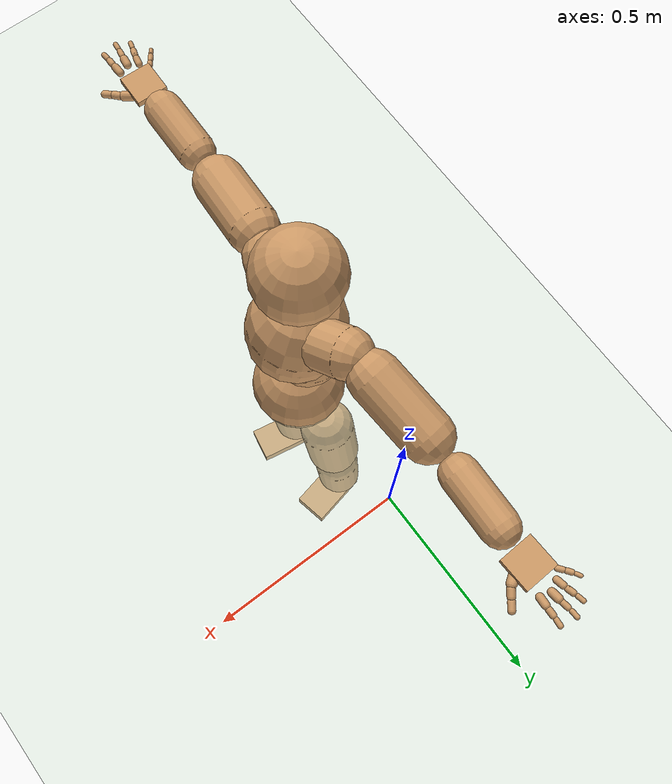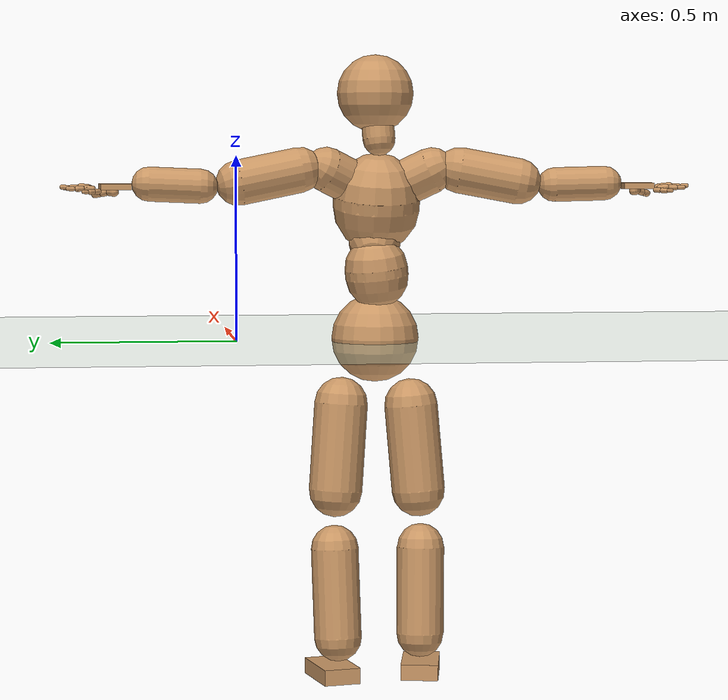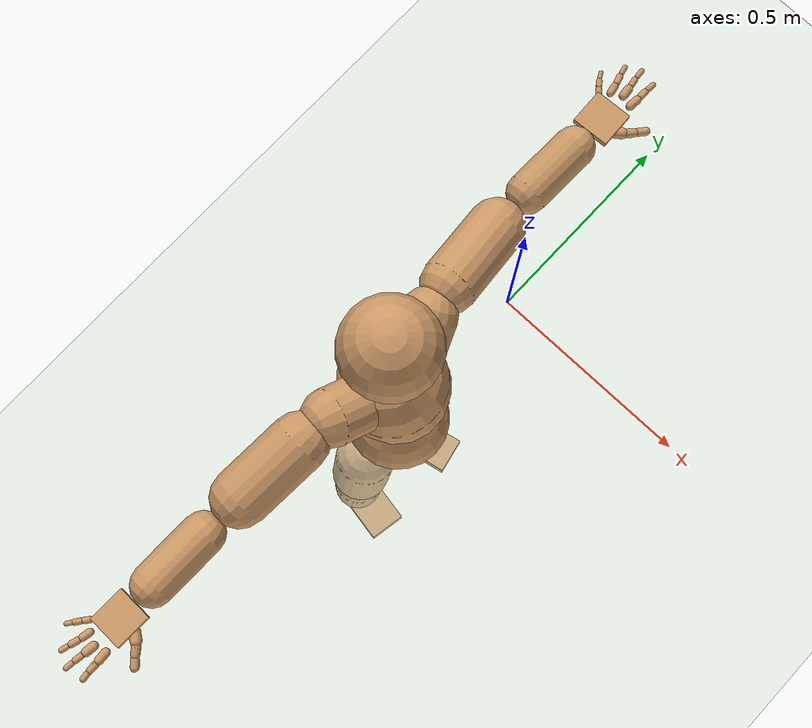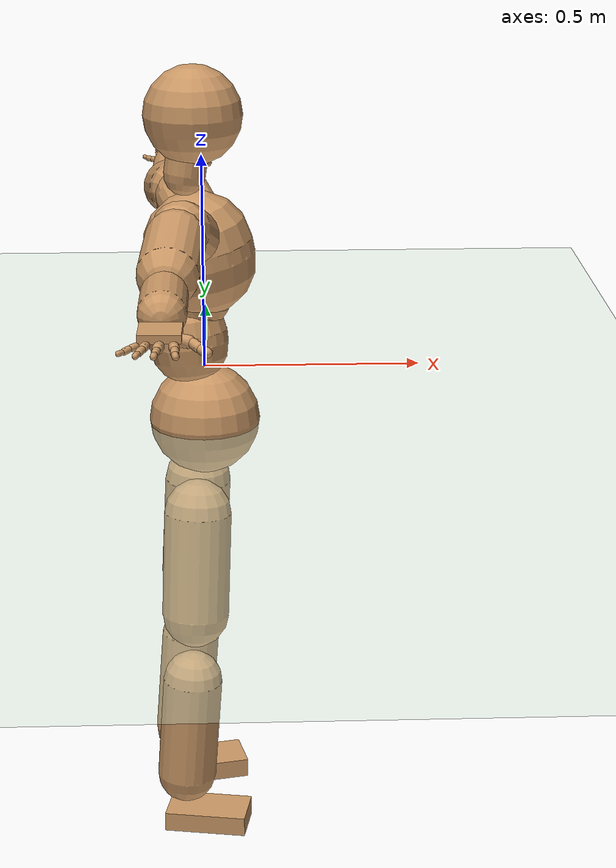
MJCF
<mujoco model="humanoid">
  <compiler coordinate="local" angle="radian"/>
  <default>
    <joint damping="0.0" armature="0.01" stiffness="0.0" limited="true"/>
    <geom conaffinity="1" condim="3" contype="7" margin="0.001" rgba="0.8 0.6 .4 1"/>
  </default>
  <asset>
    <texture type="skybox" builtin="gradient" rgb1=".4 .5 .6" rgb2="0 0 0" width="100" height="100"/>
    <texture builtin="flat" height="1278" mark="cross" markrgb="1 1 1" name="texgeom" random="0.01" rgb1="0.8 0.6 0.4" rgb2="0.8 0.6 0.4" type="cube" width="127"/>
    <texture builtin="checker" height="100" name="texplane" rgb1="0 0 0" rgb2="0.8 0.8 0.8" type="2d" width="100"/>
    <material name="MatPlane" reflectance="0.5" shininess="1" specular="1" texrepeat="60 60" texture="texplane"/>
    <material name="geom" texture="texgeom" texuniform="true"/>
  </asset>
  <worldbody>
    <light cutoff="100" diffuse="1 1 1" dir="-0 0 -1.3" directional="true" exponent="1" pos="0 0 1.3" specular=".1 .1 .1"/>
    <geom conaffinity="1" condim="3" name="floor" pos="0 0 0" rgba="0.8 0.9 0.8 1" size="100 100 .2" type="plane" material="MatPlane"/>
    <body name="Pelvis" pos="0.0011 -0.3762 0.0069">
      <freejoint name="Pelvis"/>
      <geom type="sphere" contype="1" conaffinity="1" density="500" size="0.1190" pos="0.0000 0.0000 0.0000" name="Pelvis"/>
      <body name="L_Hip" pos="-0.014 0.0897 -0.0989">
        <joint name="L_Hip_x" type="hinge" pos="0 0 0" axis="1 0 0" stiffness="800" damping="80" armature="0.02" range="-180.0000 180.0000"/>
        <joint name="L_Hip_y" type="hinge" pos="0 0 0" axis="0 1 0" stiffness="800" damping="80" armature="0.02" range="-180.0000 180.0000"/>
        <joint name="L_Hip_z" type="hinge" pos="0 0 0" axis="0 0 1" stiffness="800" damping="80" armature="0.02" range="-180.0000 180.0000"/>
        <geom type="capsule" contype="1" conaffinity="1" density="500" fromto="-0.0044 0.0055 -0.0782 -0.0175 0.0221 -0.3129" size="0.0725" name="L_Hip"/>
        <body name="L_Knee" pos="-0.0219 0.0276 -0.3911">
          <joint name="L_Knee_x" type="hinge" pos="0 0 0" axis="1 0 0" stiffness="800" damping="80" armature="0.02" range="-180.0000 180.0000"/>
          <joint name="L_Knee_y" type="hinge" pos="0 0 0" axis="0 1 0" stiffness="800" damping="80" armature="0.02" range="-180.0000 180.0000"/>
          <joint name="L_Knee_z" type="hinge" pos="0 0 0" axis="0 0 1" stiffness="800" damping="80" armature="0.02" range="-180.0000 180.0000"/>
          <geom type="capsule" contype="1" conaffinity="1" density="500" fromto="-0.0063 -0.0021 -0.0803 -0.0253 -0.0085 -0.3211" size="0.0645" name="L_Knee"/>
          <body name="L_Ankle" pos="-0.0317 -0.0106 -0.4014">
            <joint name="L_Ankle_x" type="hinge" pos="0 0 0" axis="1 0 0" stiffness="800" damping="80" armature="0.02" range="-180.0000 180.0000"/>
            <joint name="L_Ankle_y" type="hinge" pos="0 0 0" axis="0 1 0" stiffness="800" damping="80" armature="0.02" range="-180.0000 180.0000"/>
            <joint name="L_Ankle_z" type="hinge" pos="0 0 0" axis="0 0 1" stiffness="800" damping="80" armature="0.02" range="-180.0000 180.0000"/>
            <geom type="box" contype="1" conaffinity="1" density="500" pos="0.0560 0.0118 -0.0218" size="0.0899 0.0507 0.0215" quat="0.9946 0.0000 0.0000 0.1037" name="L_Ankle"/>
            <body name="L_Toe" pos="0.1121 0.0236 -0.0437">
              <joint name="L_Toe_x" type="hinge" pos="0 0 0" axis="1 0 0" stiffness="500" damping="50" armature="0.02" range="-180.0000 180.0000"/>
              <joint name="L_Toe_y" type="hinge" pos="0 0 0" axis="0 1 0" stiffness="500" damping="50" armature="0.02" range="-180.0000 180.0000"/>
              <joint name="L_Toe_z" type="hinge" pos="0 0 0" axis="0 0 1" stiffness="500" damping="50" armature="0.02" range="-180.0000 180.0000"/>
              <geom type="box" contype="1" conaffinity="1" density="500" pos="0.0000 0.0000 0.0219" size="0.001 0.0025 0.0011" quat="0.9939 0.0000 0.0000 0.1103" name="L_Toe"/>
            </body>
          </body>
        </body>
      </body>
      <body name="R_Hip" pos="-0.0149 -0.0898 -0.1053">
        <joint name="R_Hip_x" type="hinge" pos="0 0 0" axis="1 0 0" stiffness="800" damping="80" armature="0.02" range="-180.0000 180.0000"/>
        <joint name="R_Hip_y" type="hinge" pos="0 0 0" axis="0 1 0" stiffness="800" damping="80" armature="0.02" range="-180.0000 180.0000"/>
        <joint name="R_Hip_z" type="hinge" pos="0 0 0" axis="0 0 1" stiffness="800" damping="80" armature="0.02" range="-180.0000 180.0000"/>
        <geom type="capsule" contype="1" conaffinity="1" density="500" fromto="-0.0030 -0.0064 -0.0774 -0.0120 -0.0258 -0.3097" size="0.0723" name="R_Hip"/>
        <body name="R_Knee" pos="-0.015 -0.0322 -0.3871">
          <joint name="R_Knee_x" type="hinge" pos="0 0 0" axis="1 0 0" stiffness="800" damping="80" armature="0.02" range="-180.0000 180.0000"/>
          <joint name="R_Knee_y" type="hinge" pos="0 0 0" axis="0 1 0" stiffness="800" damping="80" armature="0.02" range="-180.0000 180.0000"/>
          <joint name="R_Knee_z" type="hinge" pos="0 0 0" axis="0 0 1" stiffness="800" damping="80" armature="0.02" range="-180.0000 180.0000"/>
          <geom type="capsule" contype="1" conaffinity="1" density="500" fromto="-0.0057 0.0011 -0.0785 -0.0229 0.0044 -0.3138" size="0.0645" name="R_Knee"/>
          <body name="R_Ankle" pos="-0.0286 0.0055 -0.3923">
            <joint name="R_Ankle_x" type="hinge" pos="0 0 0" axis="1 0 0" stiffness="800" damping="80" armature="0.02" range="-180.0000 180.0000"/>
            <joint name="R_Ankle_y" type="hinge" pos="0 0 0" axis="0 1 0" stiffness="800" damping="80" armature="0.02" range="-180.0000 180.0000"/>
            <joint name="R_Ankle_z" type="hinge" pos="0 0 0" axis="0 0 1" stiffness="800" damping="80" armature="0.02" range="-180.0000 180.0000"/>
            <geom type="box" contype="1" conaffinity="1" density="500" pos="0.0530 -0.0096 -0.0234" size="0.0899 0.0507 0.0215" quat="0.9960 0.0000 0.0000 -0.0891" name="R_Ankle"/>
            <body name="R_Toe" pos="0.1059 -0.0191 -0.0468">
              <joint name="R_Toe_x" type="hinge" pos="0 0 0" axis="1 0 0" stiffness="500" damping="50" armature="0.02" range="-180.0000 180.0000"/>
              <joint name="R_Toe_y" type="hinge" pos="0 0 0" axis="0 1 0" stiffness="500" damping="50" armature="0.02" range="-180.0000 180.0000"/>
              <joint name="R_Toe_z" type="hinge" pos="0 0 0" axis="0 0 1" stiffness="500" damping="50" armature="0.02" range="-180.0000 180.0000"/>
              <geom type="box" contype="1" conaffinity="1" density="500" pos="0.0000 0.0000 0.0234" size="0.001 0.0025 0.0011" quat="0.9969 0.0000 0.0000 -0.0785" name="R_Toe"/>
            </body>
          </body>
        </body>
      </body>
      <body name="Torso" pos="-0.0262 -0.0068 0.1175">
        <joint name="Torso_x" type="hinge" pos="0 0 0" axis="1 0 0" stiffness="1000" damping="100" armature="0.02" range="-180.0000 180.0000"/>
        <joint name="Torso_y" type="hinge" pos="0 0 0" axis="0 1 0" stiffness="1000" damping="100" armature="0.02" range="-180.0000 180.0000"/>
        <joint name="Torso_z" type="hinge" pos="0 0 0" axis="0 0 1" stiffness="1000" damping="100" armature="0.02" range="-180.0000 180.0000"/>
        <geom type="capsule" contype="1" conaffinity="1" density="500" fromto="-0.0072 0.0084 0.0744 -0.0048 0.0056 0.0496" size="0.085" name="Torso"/>
        <body name="Spine" pos="-0.012 0.0141 0.124">
          <joint name="Spine_x" type="hinge" pos="0 0 0" axis="1 0 0" stiffness="1000" damping="100" armature="0.02" range="-180.0000 180.0000"/>
          <joint name="Spine_y" type="hinge" pos="0 0 0" axis="0 1 0" stiffness="1000" damping="100" armature="0.02" range="-180.0000 180.0000"/>
          <joint name="Spine_z" type="hinge" pos="0 0 0" axis="0 0 1" stiffness="1000" damping="100" armature="0.02" range="-180.0000 180.0000"/>
          <geom type="capsule" contype="1" conaffinity="1" density="500" fromto="0.0286 -0.0049 0.0287 0.0191 -0.0033 0.0191" size="0.0703" name="Spine"/>
          <body name="Chest" pos="0.0476 -0.0082 0.0479">
            <joint name="Chest_x" type="hinge" pos="0 0 0" axis="1 0 0" stiffness="1000" damping="100" armature="0.02" range="-180.0000 180.0000"/>
            <joint name="Chest_y" type="hinge" pos="0 0 0" axis="0 1 0" stiffness="1000" damping="100" armature="0.02" range="-180.0000 180.0000"/>
            <joint name="Chest_z" type="hinge" pos="0 0 0" axis="0 0 1" stiffness="1000" damping="100" armature="0.02" range="-180.0000 180.0000"/>
            <geom type="capsule" contype="1" conaffinity="1" density="500" fromto="-0.0184 -0.0020 0.0934 -0.0123 -0.0013 0.0623" size="0.117" name="Chest"/>
            <body name="Neck" pos="-0.0481 -0.0068 0.2165">
              <joint name="Neck_x" type="hinge" pos="0 0 0" axis="1 0 0" stiffness="500" damping="50" armature="0.02" range="-180.0000 180.0000"/>
              <joint name="Neck_y" type="hinge" pos="0 0 0" axis="0 1 0" stiffness="500" damping="50" armature="0.02" range="-180.0000 180.0000"/>
              <joint name="Neck_z" type="hinge" pos="0 0 0" axis="0 0 1" stiffness="500" damping="50" armature="0.02" range="-180.0000 180.0000"/>
              <geom type="capsule" contype="1" conaffinity="1" density="500" fromto="0.0048 0.0019 0.0307 0.0191 0.0076 0.1227" size="0.044" name="Neck"/>
              <body name="Head" pos="0.0238 0.0095 0.1534">
                <joint name="Head_x" type="hinge" pos="0 0 0" axis="1 0 0" stiffness="500" damping="50" armature="0.02" range="-180.0000 180.0000"/>
                <joint name="Head_y" type="hinge" pos="0 0 0" axis="0 1 0" stiffness="500" damping="50" armature="0.02" range="-180.0000 180.0000"/>
                <joint name="Head_z" type="hinge" pos="0 0 0" axis="0 0 1" stiffness="500" damping="50" armature="0.02" range="-180.0000 180.0000"/>
                <geom type="sphere" contype="1" conaffinity="1" density="500" size="0.1035" pos="0.0000 0.0000 0.0000" name="Head"/>
              </body>
            </body>
            <body name="L_Thorax" pos="-0.0178 0.0593 0.1278">
              <joint name="L_Thorax_x" type="hinge" pos="0 0 0" axis="1 0 0" stiffness="500" damping="50" armature="0.02" range="-180.0000 180.0000"/>
              <joint name="L_Thorax_y" type="hinge" pos="0 0 0" axis="0 1 0" stiffness="500" damping="50" armature="0.02" range="-180.0000 180.0000"/>
              <joint name="L_Thorax_z" type="hinge" pos="0 0 0" axis="0 0 1" stiffness="500" damping="50" armature="0.02" range="-180.0000 180.0000"/>
              <geom type="capsule" contype="1" conaffinity="1" density="500" fromto="-0.0078 0.0195 0.0098 -0.0311 0.0778 0.0391" size="0.0603" name="L_Thorax"/>
              <body name="L_Shoulder" pos="-0.0389 0.0973 0.0489">
                <joint name="L_Shoulder_x" type="hinge" pos="0 0 0" axis="1 0 0" stiffness="500" damping="50" armature="0.02" range="-180.0000 180.0000"/>
                <joint name="L_Shoulder_y" type="hinge" pos="0 0 0" axis="0 1 0" stiffness="500" damping="50" armature="0.02" range="-180.0000 180.0000"/>
                <joint name="L_Shoulder_z" type="hinge" pos="0 0 0" axis="0 0 1" stiffness="500" damping="50" armature="0.02" range="-180.0000 180.0000"/>
                <geom type="capsule" contype="1" conaffinity="1" density="500" fromto="-0.0058 0.0547 -0.0111 -0.0234 0.2186 -0.0443" size="0.0612" name="L_Shoulder"/>
                <body name="L_Elbow" pos="-0.0292 0.2733 -0.0554">
                  <joint name="L_Elbow_x" type="hinge" pos="0 0 0" axis="1 0 0" stiffness="500" damping="50" armature="0.02" range="-720.0000 720.0000"/>
                  <joint name="L_Elbow_y" type="hinge" pos="0 0 0" axis="0 1 0" stiffness="500" damping="50" armature="0.02" range="-720.0000 720.0000"/>
                  <joint name="L_Elbow_z" type="hinge" pos="0 0 0" axis="0 0 1" stiffness="500" damping="50" armature="0.02" range="-720.0000 720.0000"/>
                  <geom type="capsule" contype="1" conaffinity="1" density="500" fromto="0.0016 0.0457 0.0020 0.0064 0.1827 0.0079" size="0.0457" name="L_Elbow"/>
                  <body name="L_Wrist" pos="0.0079 0.2283 0.0099">
                    <joint name="L_Wrist_x" type="hinge" pos="0 0 0" axis="1 0 0" stiffness="300" damping="30" armature="0.02" range="-180.0000 180.0000"/>
                    <joint name="L_Wrist_y" type="hinge" pos="0 0 0" axis="0 1 0" stiffness="300" damping="30" armature="0.02" range="-180.0000 180.0000"/>
                    <joint name="L_Wrist_z" type="hinge" pos="0 0 0" axis="0 0 1" stiffness="300" damping="30" armature="0.02" range="-180.0000 180.0000"/>
                    <geom type="box" contype="1" conaffinity="1" density="500" pos="-0.0021 0.0435 -0.0083" size="0.0406 0.0422 0.0078" quat="0.7243 0.0000 0.0000 -0.6895" name="L_Wrist"/>
                    <body name="L_Index1" pos="0.0215 0.1028 -0.0142">
                      <joint name="L_Index1_x" type="hinge" pos="0 0 0" axis="1 0 0" stiffness="100" damping="10" armature="0.02" range="-180.0000 180.0000"/>
                      <joint name="L_Index1_y" type="hinge" pos="0 0 0" axis="0 1 0" stiffness="100" damping="10" armature="0.02" range="-180.0000 180.0000"/>
                      <joint name="L_Index1_z" type="hinge" pos="0 0 0" axis="0 0 1" stiffness="100" damping="10" armature="0.02" range="-180.0000 180.0000"/>
                      <geom type="capsule" contype="1" conaffinity="1" density="500" fromto="0.0006 0.0063 0.0006 0.0022 0.0254 0.0025" size="0.0094" name="L_Index1"/>
                      <body name="L_Index2" pos="0.0028 0.0317 0.0032">
                        <joint name="L_Index2_x" type="hinge" pos="0 0 0" axis="1 0 0" stiffness="100" damping="10" armature="0.02" range="-180.0000 180.0000"/>
                        <joint name="L_Index2_y" type="hinge" pos="0 0 0" axis="0 1 0" stiffness="100" damping="10" armature="0.02" range="-180.0000 180.0000"/>
                        <joint name="L_Index2_z" type="hinge" pos="0 0 0" axis="0 0 1" stiffness="100" damping="10" armature="0.02" range="-180.0000 180.0000"/>
                        <geom type="capsule" contype="1" conaffinity="1" density="500" fromto="0.0001 0.0045 -0.0003 0.0002 0.0179 -0.0011" size="0.0077" name="L_Index2"/>
                        <body name="L_Index3" pos="0.0003 0.0223 -0.0013">
                          <joint name="L_Index3_x" type="hinge" pos="0 0 0" axis="1 0 0" stiffness="100" damping="10" armature="0.02" range="-180.0000 180.0000"/>
                          <joint name="L_Index3_y" type="hinge" pos="0 0 0" axis="0 1 0" stiffness="100" damping="10" armature="0.02" range="-180.0000 180.0000"/>
                          <joint name="L_Index3_z" type="hinge" pos="0 0 0" axis="0 0 1" stiffness="100" damping="10" armature="0.02" range="-180.0000 180.0000"/>
                          <geom type="capsule" contype="1" conaffinity="1" density="500" fromto="0.0005 0.0049 0.0001 0.0018 0.0195 0.0005" size="0.0063" name="L_Index3"/>
                        </body>
                      </body>
                    </body>
                    <body name="L_Middle1" pos="-0.0022 0.1098 -0.0114">
                      <joint name="L_Middle1_x" type="hinge" pos="0 0 0" axis="1 0 0" stiffness="100" damping="10" armature="0.02" range="-180.0000 180.0000"/>
                      <joint name="L_Middle1_y" type="hinge" pos="0 0 0" axis="0 1 0" stiffness="100" damping="10" armature="0.02" range="-180.0000 180.0000"/>
                      <joint name="L_Middle1_z" type="hinge" pos="0 0 0" axis="0 0 1" stiffness="100" damping="10" armature="0.02" range="-180.0000 180.0000"/>
                      <geom type="capsule" contype="1" conaffinity="1" density="500" fromto="-0.0008 0.0060 0.0003 -0.0030 0.0240 0.0014" size="0.0097" name="L_Middle1"/>
                      <body name="L_Middle2" pos="-0.0038 0.03 0.0017">
                        <joint name="L_Middle2_x" type="hinge" pos="0 0 0" axis="1 0 0" stiffness="100" damping="10" armature="0.02" range="-180.0000 180.0000"/>
                        <joint name="L_Middle2_y" type="hinge" pos="0 0 0" axis="0 1 0" stiffness="100" damping="10" armature="0.02" range="-180.0000 180.0000"/>
                        <joint name="L_Middle2_z" type="hinge" pos="0 0 0" axis="0 0 1" stiffness="100" damping="10" armature="0.02" range="-180.0000 180.0000"/>
                        <geom type="capsule" contype="1" conaffinity="1" density="500" fromto="-0.0008 0.0046 -0.0001 -0.0030 0.0185 -0.0005" size="0.007" name="L_Middle2"/>
                        <body name="L_Middle3" pos="-0.0038 0.0232 -0.0006">
                          <joint name="L_Middle3_x" type="hinge" pos="0 0 0" axis="1 0 0" stiffness="100" damping="10" armature="0.02" range="-180.0000 180.0000"/>
                          <joint name="L_Middle3_y" type="hinge" pos="0 0 0" axis="0 1 0" stiffness="100" damping="10" armature="0.02" range="-180.0000 180.0000"/>
                          <joint name="L_Middle3_z" type="hinge" pos="0 0 0" axis="0 0 1" stiffness="100" damping="10" armature="0.02" range="-180.0000 180.0000"/>
                          <geom type="capsule" contype="1" conaffinity="1" density="500" fromto="-0.0004 0.0050 0.0003 -0.0014 0.0201 0.0011" size="0.0059" name="L_Middle3"/>
                        </body>
                      </body>
                    </body>
                    <body name="L_Pinky1" pos="-0.0428 0.0837 -0.02">
                      <joint name="L_Pinky1_x" type="hinge" pos="0 0 0" axis="1 0 0" stiffness="100" damping="10" armature="0.02" range="-180.0000 180.0000"/>
                      <joint name="L_Pinky1_y" type="hinge" pos="0 0 0" axis="0 1 0" stiffness="100" damping="10" armature="0.02" range="-180.0000 180.0000"/>
                      <joint name="L_Pinky1_z" type="hinge" pos="0 0 0" axis="0 0 1" stiffness="100" damping="10" armature="0.02" range="-180.0000 180.0000"/>
                      <geom type="capsule" contype="1" conaffinity="1" density="500" fromto="-0.0024 0.0029 -0.0001 -0.0097 0.0117 -0.0005" size="0.0068" name="L_Pinky1"/>
                      <body name="L_Pinky2" pos="-0.0121 0.0146 -0.0006">
                        <joint name="L_Pinky2_x" type="hinge" pos="0 0 0" axis="1 0 0" stiffness="100" damping="10" armature="0.02" range="-180.0000 180.0000"/>
                        <joint name="L_Pinky2_y" type="hinge" pos="0 0 0" axis="0 1 0" stiffness="100" damping="10" armature="0.02" range="-180.0000 180.0000"/>
                        <joint name="L_Pinky2_z" type="hinge" pos="0 0 0" axis="0 0 1" stiffness="100" damping="10" armature="0.02" range="-180.0000 180.0000"/>
                        <geom type="capsule" contype="1" conaffinity="1" density="500" fromto="-0.0023 0.0030 -0.0002 -0.0092 0.0120 -0.0009" size="0.0066" name="L_Pinky2"/>
                        <body name="L_Pinky3" pos="-0.0116 0.015 -0.0011">
                          <joint name="L_Pinky3_x" type="hinge" pos="0 0 0" axis="1 0 0" stiffness="100" damping="10" armature="0.02" range="-180.0000 180.0000"/>
                          <joint name="L_Pinky3_y" type="hinge" pos="0 0 0" axis="0 1 0" stiffness="100" damping="10" armature="0.02" range="-180.0000 180.0000"/>
                          <joint name="L_Pinky3_z" type="hinge" pos="0 0 0" axis="0 0 1" stiffness="100" damping="10" armature="0.02" range="-180.0000 180.0000"/>
                          <geom type="capsule" contype="1" conaffinity="1" density="500" fromto="-0.0019 0.0034 0.0002 -0.0076 0.0136 0.0007" size="0.0049" name="L_Pinky3"/>
                        </body>
                      </body>
                    </body>
                    <body name="L_Ring1" pos="-0.0264 0.0975 -0.0144">
                      <joint name="L_Ring1_x" type="hinge" pos="0 0 0" axis="1 0 0" stiffness="100" damping="10" armature="0.02" range="-180.0000 180.0000"/>
                      <joint name="L_Ring1_y" type="hinge" pos="0 0 0" axis="0 1 0" stiffness="100" damping="10" armature="0.02" range="-180.0000 180.0000"/>
                      <joint name="L_Ring1_z" type="hinge" pos="0 0 0" axis="0 0 1" stiffness="100" damping="10" armature="0.02" range="-180.0000 180.0000"/>
                      <geom type="capsule" contype="1" conaffinity="1" density="500" fromto="-0.0011 0.0055 0.0004 -0.0043 0.0221 0.0015" size="0.0083" name="L_Ring1"/>
                      <body name="L_Ring2" pos="-0.0054 0.0277 0.0018">
                        <joint name="L_Ring2_x" type="hinge" pos="0 0 0" axis="1 0 0" stiffness="100" damping="10" armature="0.02" range="-180.0000 180.0000"/>
                        <joint name="L_Ring2_y" type="hinge" pos="0 0 0" axis="0 1 0" stiffness="100" damping="10" armature="0.02" range="-180.0000 180.0000"/>
                        <joint name="L_Ring2_z" type="hinge" pos="0 0 0" axis="0 0 1" stiffness="100" damping="10" armature="0.02" range="-180.0000 180.0000"/>
                        <geom type="capsule" contype="1" conaffinity="1" density="500" fromto="-0.0014 0.0045 -0.0002 -0.0057 0.0179 -0.0009" size="0.0074" name="L_Ring2"/>
                        <body name="L_Ring3" pos="-0.0072 0.0224 -0.0011">
                          <joint name="L_Ring3_x" type="hinge" pos="0 0 0" axis="1 0 0" stiffness="100" damping="10" armature="0.02" range="-180.0000 180.0000"/>
                          <joint name="L_Ring3_y" type="hinge" pos="0 0 0" axis="0 1 0" stiffness="100" damping="10" armature="0.02" range="-180.0000 180.0000"/>
                          <joint name="L_Ring3_z" type="hinge" pos="0 0 0" axis="0 0 1" stiffness="100" damping="10" armature="0.02" range="-180.0000 180.0000"/>
                          <geom type="capsule" contype="1" conaffinity="1" density="500" fromto="-0.0010 0.0049 0.0002 -0.0041 0.0195 0.0007" size="0.0057" name="L_Ring3"/>
                        </body>
                      </body>
                    </body>
                    <body name="L_Thumb1" pos="0.0284 0.0416 -0.0234">
                      <joint name="L_Thumb1_x" type="hinge" pos="0 0 0" axis="1 0 0" stiffness="100" damping="10" armature="0.02" range="-180.0000 180.0000"/>
                      <joint name="L_Thumb1_y" type="hinge" pos="0 0 0" axis="0 1 0" stiffness="100" damping="10" armature="0.02" range="-180.0000 180.0000"/>
                      <joint name="L_Thumb1_z" type="hinge" pos="0 0 0" axis="0 0 1" stiffness="100" damping="10" armature="0.02" range="-180.0000 180.0000"/>
                      <geom type="capsule" contype="1" conaffinity="1" density="500" fromto="0.0049 0.0034 0.0003 0.0195 0.0134 0.0010" size="0.0123" name="L_Thumb1"/>
                      <body name="L_Thumb2" pos="0.0244 0.0168 0.0013">
                        <joint name="L_Thumb2_x" type="hinge" pos="0 0 0" axis="1 0 0" stiffness="100" damping="10" armature="0.02" range="-180.0000 180.0000"/>
                        <joint name="L_Thumb2_y" type="hinge" pos="0 0 0" axis="0 1 0" stiffness="100" damping="10" armature="0.02" range="-180.0000 180.0000"/>
                        <joint name="L_Thumb2_z" type="hinge" pos="0 0 0" axis="0 0 1" stiffness="100" damping="10" armature="0.02" range="-180.0000 180.0000"/>
                        <geom type="capsule" contype="1" conaffinity="1" density="500" fromto="0.0029 0.0040 -0.0012 0.0117 0.0161 -0.0048" size="0.0097" name="L_Thumb2"/>
                        <body name="L_Thumb3" pos="0.0146 0.0201 -0.006">
                          <joint name="L_Thumb3_x" type="hinge" pos="0 0 0" axis="1 0 0" stiffness="100" damping="10" armature="0.02" range="-180.0000 180.0000"/>
                          <joint name="L_Thumb3_y" type="hinge" pos="0 0 0" axis="0 1 0" stiffness="100" damping="10" armature="0.02" range="-180.0000 180.0000"/>
                          <joint name="L_Thumb3_z" type="hinge" pos="0 0 0" axis="0 0 1" stiffness="100" damping="10" armature="0.02" range="-180.0000 180.0000"/>
                          <geom type="capsule" contype="1" conaffinity="1" density="500" fromto="0.0033 0.0044 -0.0008 0.0133 0.0177 -0.0032" size="0.0089" name="L_Thumb3"/>
                        </body>
                      </body>
                    </body>
                  </body>
                </body>
              </body>
            </body>
            <body name="R_Thorax" pos="-0.026 -0.0623 0.1229">
              <joint name="R_Thorax_x" type="hinge" pos="0 0 0" axis="1 0 0" stiffness="500" damping="50" armature="0.02" range="-180.0000 180.0000"/>
              <joint name="R_Thorax_y" type="hinge" pos="0 0 0" axis="0 1 0" stiffness="500" damping="50" armature="0.02" range="-180.0000 180.0000"/>
              <joint name="R_Thorax_z" type="hinge" pos="0 0 0" axis="0 0 1" stiffness="500" damping="50" armature="0.02" range="-180.0000 180.0000"/>
              <geom type="capsule" contype="1" conaffinity="1" density="500" fromto="-0.0060 -0.0212 0.0103 -0.0240 -0.0848 0.0414" size="0.0616" name="R_Thorax"/>
              <body name="R_Shoulder" pos="-0.03 -0.106 0.0517">
                <joint name="R_Shoulder_x" type="hinge" pos="0 0 0" axis="1 0 0" stiffness="500" damping="50" armature="0.02" range="-180.0000 180.0000"/>
                <joint name="R_Shoulder_y" type="hinge" pos="0 0 0" axis="0 1 0" stiffness="500" damping="50" armature="0.02" range="-180.0000 180.0000"/>
                <joint name="R_Shoulder_z" type="hinge" pos="0 0 0" axis="0 0 1" stiffness="500" damping="50" armature="0.02" range="-180.0000 180.0000"/>
                <geom type="capsule" contype="1" conaffinity="1" density="500" fromto="-0.0043 -0.0526 -0.0100 -0.0173 -0.2105 -0.0399" size="0.0617" name="R_Shoulder"/>
                <body name="R_Elbow" pos="-0.0217 -0.2632 -0.0499">
                  <joint name="R_Elbow_x" type="hinge" pos="0 0 0" axis="1 0 0" stiffness="500" damping="50" armature="0.02" range="-720.0000 720.0000"/>
                  <joint name="R_Elbow_y" type="hinge" pos="0 0 0" axis="0 1 0" stiffness="500" damping="50" armature="0.02" range="-720.0000 720.0000"/>
                  <joint name="R_Elbow_z" type="hinge" pos="0 0 0" axis="0 0 1" stiffness="500" damping="50" armature="0.02" range="-720.0000 720.0000"/>
                  <geom type="capsule" contype="1" conaffinity="1" density="500" fromto="-0.0005 -0.0457 0.0011 -0.0018 -0.1827 0.0045" size="0.0459" name="R_Elbow"/>
                  <body name="R_Wrist" pos="-0.0023 -0.2284 0.0056">
                    <joint name="R_Wrist_x" type="hinge" pos="0 0 0" axis="1 0 0" stiffness="300" damping="30" armature="0.02" range="-180.0000 180.0000"/>
                    <joint name="R_Wrist_y" type="hinge" pos="0 0 0" axis="0 1 0" stiffness="300" damping="30" armature="0.02" range="-180.0000 180.0000"/>
                    <joint name="R_Wrist_z" type="hinge" pos="0 0 0" axis="0 0 1" stiffness="300" damping="30" armature="0.02" range="-180.0000 180.0000"/>
                    <geom type="box" contype="1" conaffinity="1" density="500" pos="-0.0012 -0.0429 -0.0079" size="0.0406 0.0395 0.0081" quat="0.7167 0.0000 0.0000 0.6973" name="R_Wrist"/>
                    <body name="R_Index1" pos="0.0235 -0.1015 -0.0133">
                      <joint name="R_Index1_x" type="hinge" pos="0 0 0" axis="1 0 0" stiffness="100" damping="10" armature="0.02" range="-180.0000 180.0000"/>
                      <joint name="R_Index1_y" type="hinge" pos="0 0 0" axis="0 1 0" stiffness="100" damping="10" armature="0.02" range="-180.0000 180.0000"/>
                      <joint name="R_Index1_z" type="hinge" pos="0 0 0" axis="0 0 1" stiffness="100" damping="10" armature="0.02" range="-180.0000 180.0000"/>
                      <geom type="capsule" contype="1" conaffinity="1" density="500" fromto="0.0006 -0.0063 0.0006 0.0022 -0.0254 0.0025" size="0.0094" name="R_Index1"/>
                      <body name="R_Index2" pos="0.0028 -0.0317 0.0032">
                        <joint name="R_Index2_x" type="hinge" pos="0 0 0" axis="1 0 0" stiffness="100" damping="10" armature="0.02" range="-180.0000 180.0000"/>
                        <joint name="R_Index2_y" type="hinge" pos="0 0 0" axis="0 1 0" stiffness="100" damping="10" armature="0.02" range="-180.0000 180.0000"/>
                        <joint name="R_Index2_z" type="hinge" pos="0 0 0" axis="0 0 1" stiffness="100" damping="10" armature="0.02" range="-180.0000 180.0000"/>
                        <geom type="capsule" contype="1" conaffinity="1" density="500" fromto="0.0001 -0.0045 -0.0003 0.0002 -0.0179 -0.0011" size="0.0077" name="R_Index2"/>
                        <body name="R_Index3" pos="0.0003 -0.0223 -0.0013">
                          <joint name="R_Index3_x" type="hinge" pos="0 0 0" axis="1 0 0" stiffness="100" damping="10" armature="0.02" range="-180.0000 180.0000"/>
                          <joint name="R_Index3_y" type="hinge" pos="0 0 0" axis="0 1 0" stiffness="100" damping="10" armature="0.02" range="-180.0000 180.0000"/>
                          <joint name="R_Index3_z" type="hinge" pos="0 0 0" axis="0 0 1" stiffness="100" damping="10" armature="0.02" range="-180.0000 180.0000"/>
                          <geom type="capsule" contype="1" conaffinity="1" density="500" fromto="0.0005 -0.0041 0.0001 0.0018 -0.0163 0.0005" size="0.0066" name="R_Index3"/>
                        </body>
                      </body>
                    </body>
                    <body name="R_Middle1" pos="-0.0003 -0.1086 -0.0105">
                      <joint name="R_Middle1_x" type="hinge" pos="0 0 0" axis="1 0 0" stiffness="100" damping="10" armature="0.02" range="-180.0000 180.0000"/>
                      <joint name="R_Middle1_y" type="hinge" pos="0 0 0" axis="0 1 0" stiffness="100" damping="10" armature="0.02" range="-180.0000 180.0000"/>
                      <joint name="R_Middle1_z" type="hinge" pos="0 0 0" axis="0 0 1" stiffness="100" damping="10" armature="0.02" range="-180.0000 180.0000"/>
                      <geom type="capsule" contype="1" conaffinity="1" density="500" fromto="-0.0008 -0.0060 0.0003 -0.0030 -0.0240 0.0014" size="0.0097" name="R_Middle1"/>
                      <body name="R_Middle2" pos="-0.0038 -0.03 0.0017">
                        <joint name="R_Middle2_x" type="hinge" pos="0 0 0" axis="1 0 0" stiffness="100" damping="10" armature="0.02" range="-180.0000 180.0000"/>
                        <joint name="R_Middle2_y" type="hinge" pos="0 0 0" axis="0 1 0" stiffness="100" damping="10" armature="0.02" range="-180.0000 180.0000"/>
                        <joint name="R_Middle2_z" type="hinge" pos="0 0 0" axis="0 0 1" stiffness="100" damping="10" armature="0.02" range="-180.0000 180.0000"/>
                        <geom type="capsule" contype="1" conaffinity="1" density="500" fromto="-0.0008 -0.0046 -0.0001 -0.0030 -0.0185 -0.0005" size="0.007" name="R_Middle2"/>
                        <body name="R_Middle3" pos="-0.0038 -0.0232 -0.0006">
                          <joint name="R_Middle3_x" type="hinge" pos="0 0 0" axis="1 0 0" stiffness="100" damping="10" armature="0.02" range="-180.0000 180.0000"/>
                          <joint name="R_Middle3_y" type="hinge" pos="0 0 0" axis="0 1 0" stiffness="100" damping="10" armature="0.02" range="-180.0000 180.0000"/>
                          <joint name="R_Middle3_z" type="hinge" pos="0 0 0" axis="0 0 1" stiffness="100" damping="10" armature="0.02" range="-180.0000 180.0000"/>
                          <geom type="capsule" contype="1" conaffinity="1" density="500" fromto="-0.0004 -0.0042 0.0003 -0.0014 -0.0169 0.0011" size="0.0061" name="R_Middle3"/>
                        </body>
                      </body>
                    </body>
                    <body name="R_Pinky1" pos="-0.0409 -0.0825 -0.019">
                      <joint name="R_Pinky1_x" type="hinge" pos="0 0 0" axis="1 0 0" stiffness="100" damping="10" armature="0.02" range="-180.0000 180.0000"/>
                      <joint name="R_Pinky1_y" type="hinge" pos="0 0 0" axis="0 1 0" stiffness="100" damping="10" armature="0.02" range="-180.0000 180.0000"/>
                      <joint name="R_Pinky1_z" type="hinge" pos="0 0 0" axis="0 0 1" stiffness="100" damping="10" armature="0.02" range="-180.0000 180.0000"/>
                      <geom type="capsule" contype="1" conaffinity="1" density="500" fromto="-0.0024 -0.0029 -0.0001 -0.0097 -0.0117 -0.0005" size="0.0068" name="R_Pinky1"/>
                      <body name="R_Pinky2" pos="-0.0121 -0.0146 -0.0006">
                        <joint name="R_Pinky2_x" type="hinge" pos="0 0 0" axis="1 0 0" stiffness="100" damping="10" armature="0.02" range="-180.0000 180.0000"/>
                        <joint name="R_Pinky2_y" type="hinge" pos="0 0 0" axis="0 1 0" stiffness="100" damping="10" armature="0.02" range="-180.0000 180.0000"/>
                        <joint name="R_Pinky2_z" type="hinge" pos="0 0 0" axis="0 0 1" stiffness="100" damping="10" armature="0.02" range="-180.0000 180.0000"/>
                        <geom type="capsule" contype="1" conaffinity="1" density="500" fromto="-0.0023 -0.0030 -0.0002 -0.0092 -0.0120 -0.0009" size="0.0066" name="R_Pinky2"/>
                        <body name="R_Pinky3" pos="-0.0116 -0.015 -0.0011">
                          <joint name="R_Pinky3_x" type="hinge" pos="0 0 0" axis="1 0 0" stiffness="100" damping="10" armature="0.02" range="-180.0000 180.0000"/>
                          <joint name="R_Pinky3_y" type="hinge" pos="0 0 0" axis="0 1 0" stiffness="100" damping="10" armature="0.02" range="-180.0000 180.0000"/>
                          <joint name="R_Pinky3_z" type="hinge" pos="0 0 0" axis="0 0 1" stiffness="100" damping="10" armature="0.02" range="-180.0000 180.0000"/>
                          <geom type="capsule" contype="1" conaffinity="1" density="500" fromto="-0.0019 -0.0026 0.0002 -0.0076 -0.0104 0.0007" size="0.0052" name="R_Pinky3"/>
                        </body>
                      </body>
                    </body>
                    <body name="R_Ring1" pos="-0.0244 -0.0962 -0.0135">
                      <joint name="R_Ring1_x" type="hinge" pos="0 0 0" axis="1 0 0" stiffness="100" damping="10" armature="0.02" range="-180.0000 180.0000"/>
                      <joint name="R_Ring1_y" type="hinge" pos="0 0 0" axis="0 1 0" stiffness="100" damping="10" armature="0.02" range="-180.0000 180.0000"/>
                      <joint name="R_Ring1_z" type="hinge" pos="0 0 0" axis="0 0 1" stiffness="100" damping="10" armature="0.02" range="-180.0000 180.0000"/>
                      <geom type="capsule" contype="1" conaffinity="1" density="500" fromto="-0.0011 -0.0055 0.0004 -0.0043 -0.0221 0.0015" size="0.0083" name="R_Ring1"/>
                      <body name="R_Ring2" pos="-0.0054 -0.0277 0.0018">
                        <joint name="R_Ring2_x" type="hinge" pos="0 0 0" axis="1 0 0" stiffness="100" damping="10" armature="0.02" range="-180.0000 180.0000"/>
                        <joint name="R_Ring2_y" type="hinge" pos="0 0 0" axis="0 1 0" stiffness="100" damping="10" armature="0.02" range="-180.0000 180.0000"/>
                        <joint name="R_Ring2_z" type="hinge" pos="0 0 0" axis="0 0 1" stiffness="100" damping="10" armature="0.02" range="-180.0000 180.0000"/>
                        <geom type="capsule" contype="1" conaffinity="1" density="500" fromto="-0.0014 -0.0045 -0.0002 -0.0057 -0.0179 -0.0009" size="0.0074" name="R_Ring2"/>
                        <body name="R_Ring3" pos="-0.0072 -0.0224 -0.0011">
                          <joint name="R_Ring3_x" type="hinge" pos="0 0 0" axis="1 0 0" stiffness="100" damping="10" armature="0.02" range="-180.0000 180.0000"/>
                          <joint name="R_Ring3_y" type="hinge" pos="0 0 0" axis="0 1 0" stiffness="100" damping="10" armature="0.02" range="-180.0000 180.0000"/>
                          <joint name="R_Ring3_z" type="hinge" pos="0 0 0" axis="0 0 1" stiffness="100" damping="10" armature="0.02" range="-180.0000 180.0000"/>
                          <geom type="capsule" contype="1" conaffinity="1" density="500" fromto="-0.0010 -0.0041 0.0002 -0.0041 -0.0163 0.0007" size="0.0059" name="R_Ring3"/>
                        </body>
                      </body>
                    </body>
                    <body name="R_Thumb1" pos="0.0303 -0.0404 -0.0224">
                      <joint name="R_Thumb1_x" type="hinge" pos="0 0 0" axis="1 0 0" stiffness="100" damping="10" armature="0.02" range="-180.0000 180.0000"/>
                      <joint name="R_Thumb1_y" type="hinge" pos="0 0 0" axis="0 1 0" stiffness="100" damping="10" armature="0.02" range="-180.0000 180.0000"/>
                      <joint name="R_Thumb1_z" type="hinge" pos="0 0 0" axis="0 0 1" stiffness="100" damping="10" armature="0.02" range="-180.0000 180.0000"/>
                      <geom type="capsule" contype="1" conaffinity="1" density="500" fromto="0.0049 -0.0034 0.0003 0.0195 -0.0134 0.0010" size="0.0123" name="R_Thumb1"/>
                      <body name="R_Thumb2" pos="0.0244 -0.0168 0.0013">
                        <joint name="R_Thumb2_x" type="hinge" pos="0 0 0" axis="1 0 0" stiffness="100" damping="10" armature="0.02" range="-180.0000 180.0000"/>
                        <joint name="R_Thumb2_y" type="hinge" pos="0 0 0" axis="0 1 0" stiffness="100" damping="10" armature="0.02" range="-180.0000 180.0000"/>
                        <joint name="R_Thumb2_z" type="hinge" pos="0 0 0" axis="0 0 1" stiffness="100" damping="10" armature="0.02" range="-180.0000 180.0000"/>
                        <geom type="capsule" contype="1" conaffinity="1" density="500" fromto="0.0029 -0.0040 -0.0012 0.0117 -0.0161 -0.0048" size="0.0097" name="R_Thumb2"/>
                        <body name="R_Thumb3" pos="0.0146 -0.0201 -0.006">
                          <joint name="R_Thumb3_x" type="hinge" pos="0 0 0" axis="1 0 0" stiffness="100" damping="10" armature="0.02" range="-180.0000 180.0000"/>
                          <joint name="R_Thumb3_y" type="hinge" pos="0 0 0" axis="0 1 0" stiffness="100" damping="10" armature="0.02" range="-180.0000 180.0000"/>
                          <joint name="R_Thumb3_z" type="hinge" pos="0 0 0" axis="0 0 1" stiffness="100" damping="10" armature="0.02" range="-180.0000 180.0000"/>
                          <geom type="capsule" contype="1" conaffinity="1" density="500" fromto="0.0033 -0.0036 -0.0008 0.0133 -0.0145 -0.0032" size="0.0092" name="R_Thumb3"/>
                        </body>
                      </body>
                    </body>
                  </body>
                </body>
              </body>
            </body>
          </body>
        </body>
      </body>
    </body>
  </worldbody>
  <actuator>
    <motor name="L_Hip_x" joint="L_Hip_x" gear="500"/>
    <motor name="L_Hip_y" joint="L_Hip_y" gear="500"/>
    <motor name="L_Hip_z" joint="L_Hip_z" gear="500"/>
    <motor name="L_Knee_x" joint="L_Knee_x" gear="500"/>
    <motor name="L_Knee_y" joint="L_Knee_y" gear="500"/>
    <motor name="L_Knee_z" joint="L_Knee_z" gear="500"/>
    <motor name="L_Ankle_x" joint="L_Ankle_x" gear="500"/>
    <motor name="L_Ankle_y" joint="L_Ankle_y" gear="500"/>
    <motor name="L_Ankle_z" joint="L_Ankle_z" gear="500"/>
    <motor name="L_Toe_x" joint="L_Toe_x" gear="500"/>
    <motor name="L_Toe_y" joint="L_Toe_y" gear="500"/>
    <motor name="L_Toe_z" joint="L_Toe_z" gear="500"/>
    <motor name="R_Hip_x" joint="R_Hip_x" gear="500"/>
    <motor name="R_Hip_y" joint="R_Hip_y" gear="500"/>
    <motor name="R_Hip_z" joint="R_Hip_z" gear="500"/>
    <motor name="R_Knee_x" joint="R_Knee_x" gear="500"/>
    <motor name="R_Knee_y" joint="R_Knee_y" gear="500"/>
    <motor name="R_Knee_z" joint="R_Knee_z" gear="500"/>
    <motor name="R_Ankle_x" joint="R_Ankle_x" gear="500"/>
    <motor name="R_Ankle_y" joint="R_Ankle_y" gear="500"/>
    <motor name="R_Ankle_z" joint="R_Ankle_z" gear="500"/>
    <motor name="R_Toe_x" joint="R_Toe_x" gear="500"/>
    <motor name="R_Toe_y" joint="R_Toe_y" gear="500"/>
    <motor name="R_Toe_z" joint="R_Toe_z" gear="500"/>
    <motor name="Torso_x" joint="Torso_x" gear="500"/>
    <motor name="Torso_y" joint="Torso_y" gear="500"/>
    <motor name="Torso_z" joint="Torso_z" gear="500"/>
    <motor name="Spine_x" joint="Spine_x" gear="500"/>
    <motor name="Spine_y" joint="Spine_y" gear="500"/>
    <motor name="Spine_z" joint="Spine_z" gear="500"/>
    <motor name="Chest_x" joint="Chest_x" gear="500"/>
    <motor name="Chest_y" joint="Chest_y" gear="500"/>
    <motor name="Chest_z" joint="Chest_z" gear="500"/>
    <motor name="Neck_x" joint="Neck_x" gear="500"/>
    <motor name="Neck_y" joint="Neck_y" gear="500"/>
    <motor name="Neck_z" joint="Neck_z" gear="500"/>
    <motor name="Head_x" joint="Head_x" gear="500"/>
    <motor name="Head_y" joint="Head_y" gear="500"/>
    <motor name="Head_z" joint="Head_z" gear="500"/>
    <motor name="L_Thorax_x" joint="L_Thorax_x" gear="500"/>
    <motor name="L_Thorax_y" joint="L_Thorax_y" gear="500"/>
    <motor name="L_Thorax_z" joint="L_Thorax_z" gear="500"/>
    <motor name="L_Shoulder_x" joint="L_Shoulder_x" gear="500"/>
    <motor name="L_Shoulder_y" joint="L_Shoulder_y" gear="500"/>
    <motor name="L_Shoulder_z" joint="L_Shoulder_z" gear="500"/>
    <motor name="L_Elbow_x" joint="L_Elbow_x" gear="500"/>
    <motor name="L_Elbow_y" joint="L_Elbow_y" gear="500"/>
    <motor name="L_Elbow_z" joint="L_Elbow_z" gear="500"/>
    <motor name="L_Wrist_x" joint="L_Wrist_x" gear="500"/>
    <motor name="L_Wrist_y" joint="L_Wrist_y" gear="500"/>
    <motor name="L_Wrist_z" joint="L_Wrist_z" gear="500"/>
    <motor name="L_Index1_x" joint="L_Index1_x" gear="500"/>
    <motor name="L_Index1_y" joint="L_Index1_y" gear="500"/>
    <motor name="L_Index1_z" joint="L_Index1_z" gear="500"/>
    <motor name="L_Index2_x" joint="L_Index2_x" gear="500"/>
    <motor name="L_Index2_y" joint="L_Index2_y" gear="500"/>
    <motor name="L_Index2_z" joint="L_Index2_z" gear="500"/>
    <motor name="L_Index3_x" joint="L_Index3_x" gear="500"/>
    <motor name="L_Index3_y" joint="L_Index3_y" gear="500"/>
    <motor name="L_Index3_z" joint="L_Index3_z" gear="500"/>
    <motor name="L_Middle1_x" joint="L_Middle1_x" gear="500"/>
    <motor name="L_Middle1_y" joint="L_Middle1_y" gear="500"/>
    <motor name="L_Middle1_z" joint="L_Middle1_z" gear="500"/>
    <motor name="L_Middle2_x" joint="L_Middle2_x" gear="500"/>
    <motor name="L_Middle2_y" joint="L_Middle2_y" gear="500"/>
    <motor name="L_Middle2_z" joint="L_Middle2_z" gear="500"/>
    <motor name="L_Middle3_x" joint="L_Middle3_x" gear="500"/>
    <motor name="L_Middle3_y" joint="L_Middle3_y" gear="500"/>
    <motor name="L_Middle3_z" joint="L_Middle3_z" gear="500"/>
    <motor name="L_Pinky1_x" joint="L_Pinky1_x" gear="500"/>
    <motor name="L_Pinky1_y" joint="L_Pinky1_y" gear="500"/>
    <motor name="L_Pinky1_z" joint="L_Pinky1_z" gear="500"/>
    <motor name="L_Pinky2_x" joint="L_Pinky2_x" gear="500"/>
    <motor name="L_Pinky2_y" joint="L_Pinky2_y" gear="500"/>
    <motor name="L_Pinky2_z" joint="L_Pinky2_z" gear="500"/>
    <motor name="L_Pinky3_x" joint="L_Pinky3_x" gear="500"/>
    <motor name="L_Pinky3_y" joint="L_Pinky3_y" gear="500"/>
    <motor name="L_Pinky3_z" joint="L_Pinky3_z" gear="500"/>
    <motor name="L_Ring1_x" joint="L_Ring1_x" gear="500"/>
    <motor name="L_Ring1_y" joint="L_Ring1_y" gear="500"/>
    <motor name="L_Ring1_z" joint="L_Ring1_z" gear="500"/>
    <motor name="L_Ring2_x" joint="L_Ring2_x" gear="500"/>
    <motor name="L_Ring2_y" joint="L_Ring2_y" gear="500"/>
    <motor name="L_Ring2_z" joint="L_Ring2_z" gear="500"/>
    <motor name="L_Ring3_x" joint="L_Ring3_x" gear="500"/>
    <motor name="L_Ring3_y" joint="L_Ring3_y" gear="500"/>
    <motor name="L_Ring3_z" joint="L_Ring3_z" gear="500"/>
    <motor name="L_Thumb1_x" joint="L_Thumb1_x" gear="500"/>
    <motor name="L_Thumb1_y" joint="L_Thumb1_y" gear="500"/>
    <motor name="L_Thumb1_z" joint="L_Thumb1_z" gear="500"/>
    <motor name="L_Thumb2_x" joint="L_Thumb2_x" gear="500"/>
    <motor name="L_Thumb2_y" joint="L_Thumb2_y" gear="500"/>
    <motor name="L_Thumb2_z" joint="L_Thumb2_z" gear="500"/>
    <motor name="L_Thumb3_x" joint="L_Thumb3_x" gear="500"/>
    <motor name="L_Thumb3_y" joint="L_Thumb3_y" gear="500"/>
    <motor name="L_Thumb3_z" joint="L_Thumb3_z" gear="500"/>
    <motor name="R_Thorax_x" joint="R_Thorax_x" gear="500"/>
    <motor name="R_Thorax_y" joint="R_Thorax_y" gear="500"/>
    <motor name="R_Thorax_z" joint="R_Thorax_z" gear="500"/>
    <motor name="R_Shoulder_x" joint="R_Shoulder_x" gear="500"/>
    <motor name="R_Shoulder_y" joint="R_Shoulder_y" gear="500"/>
    <motor name="R_Shoulder_z" joint="R_Shoulder_z" gear="500"/>
    <motor name="R_Elbow_x" joint="R_Elbow_x" gear="500"/>
    <motor name="R_Elbow_y" joint="R_Elbow_y" gear="500"/>
    <motor name="R_Elbow_z" joint="R_Elbow_z" gear="500"/>
    <motor name="R_Wrist_x" joint="R_Wrist_x" gear="500"/>
    <motor name="R_Wrist_y" joint="R_Wrist_y" gear="500"/>
    <motor name="R_Wrist_z" joint="R_Wrist_z" gear="500"/>
    <motor name="R_Index1_x" joint="R_Index1_x" gear="500"/>
    <motor name="R_Index1_y" joint="R_Index1_y" gear="500"/>
    <motor name="R_Index1_z" joint="R_Index1_z" gear="500"/>
    <motor name="R_Index2_x" joint="R_Index2_x" gear="500"/>
    <motor name="R_Index2_y" joint="R_Index2_y" gear="500"/>
    <motor name="R_Index2_z" joint="R_Index2_z" gear="500"/>
    <motor name="R_Index3_x" joint="R_Index3_x" gear="500"/>
    <motor name="R_Index3_y" joint="R_Index3_y" gear="500"/>
    <motor name="R_Index3_z" joint="R_Index3_z" gear="500"/>
    <motor name="R_Middle1_x" joint="R_Middle1_x" gear="500"/>
    <motor name="R_Middle1_y" joint="R_Middle1_y" gear="500"/>
    <motor name="R_Middle1_z" joint="R_Middle1_z" gear="500"/>
    <motor name="R_Middle2_x" joint="R_Middle2_x" gear="500"/>
    <motor name="R_Middle2_y" joint="R_Middle2_y" gear="500"/>
    <motor name="R_Middle2_z" joint="R_Middle2_z" gear="500"/>
    <motor name="R_Middle3_x" joint="R_Middle3_x" gear="500"/>
    <motor name="R_Middle3_y" joint="R_Middle3_y" gear="500"/>
    <motor name="R_Middle3_z" joint="R_Middle3_z" gear="500"/>
    <motor name="R_Pinky1_x" joint="R_Pinky1_x" gear="500"/>
    <motor name="R_Pinky1_y" joint="R_Pinky1_y" gear="500"/>
    <motor name="R_Pinky1_z" joint="R_Pinky1_z" gear="500"/>
    <motor name="R_Pinky2_x" joint="R_Pinky2_x" gear="500"/>
    <motor name="R_Pinky2_y" joint="R_Pinky2_y" gear="500"/>
    <motor name="R_Pinky2_z" joint="R_Pinky2_z" gear="500"/>
    <motor name="R_Pinky3_x" joint="R_Pinky3_x" gear="500"/>
    <motor name="R_Pinky3_y" joint="R_Pinky3_y" gear="500"/>
    <motor name="R_Pinky3_z" joint="R_Pinky3_z" gear="500"/>
    <motor name="R_Ring1_x" joint="R_Ring1_x" gear="500"/>
    <motor name="R_Ring1_y" joint="R_Ring1_y" gear="500"/>
    <motor name="R_Ring1_z" joint="R_Ring1_z" gear="500"/>
    <motor name="R_Ring2_x" joint="R_Ring2_x" gear="500"/>
    <motor name="R_Ring2_y" joint="R_Ring2_y" gear="500"/>
    <motor name="R_Ring2_z" joint="R_Ring2_z" gear="500"/>
    <motor name="R_Ring3_x" joint="R_Ring3_x" gear="500"/>
    <motor name="R_Ring3_y" joint="R_Ring3_y" gear="500"/>
    <motor name="R_Ring3_z" joint="R_Ring3_z" gear="500"/>
    <motor name="R_Thumb1_x" joint="R_Thumb1_x" gear="500"/>
    <motor name="R_Thumb1_y" joint="R_Thumb1_y" gear="500"/>
    <motor name="R_Thumb1_z" joint="R_Thumb1_z" gear="500"/>
    <motor name="R_Thumb2_x" joint="R_Thumb2_x" gear="500"/>
    <motor name="R_Thumb2_y" joint="R_Thumb2_y" gear="500"/>
    <motor name="R_Thumb2_z" joint="R_Thumb2_z" gear="500"/>
    <motor name="R_Thumb3_x" joint="R_Thumb3_x" gear="500"/>
    <motor name="R_Thumb3_y" joint="R_Thumb3_y" gear="500"/>
    <motor name="R_Thumb3_z" joint="R_Thumb3_z" gear="500"/>
  </actuator>
  <contact>
    <exclude body1="Torso" body2="Chest"/>
    <exclude body1="Head" body2="Chest"/>
    <exclude body1="R_Knee" body2="R_Toe"/>
    <exclude body1="R_Knee" body2="L_Ankle"/>
    <exclude body1="R_Knee" body2="L_Toe"/>
    <exclude body1="L_Knee" body2="L_Toe"/>
    <exclude body1="L_Knee" body2="R_Ankle"/>
    <exclude body1="L_Knee" body2="R_Toe"/>
    <exclude body1="L_Shoulder" body2="Chest"/>
    <exclude body1="R_Shoulder" body2="Chest"/>
  </contact>
  <sensor/>
  <size njmax="700" nconmax="700"/>
</mujoco>
